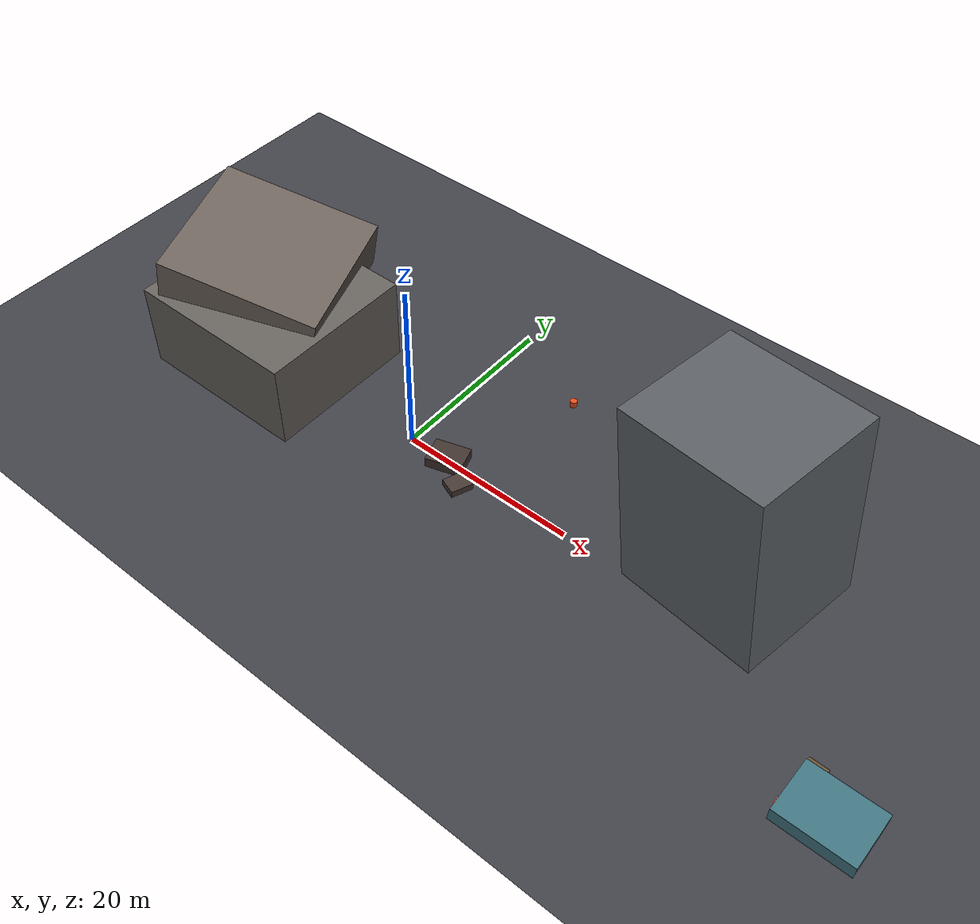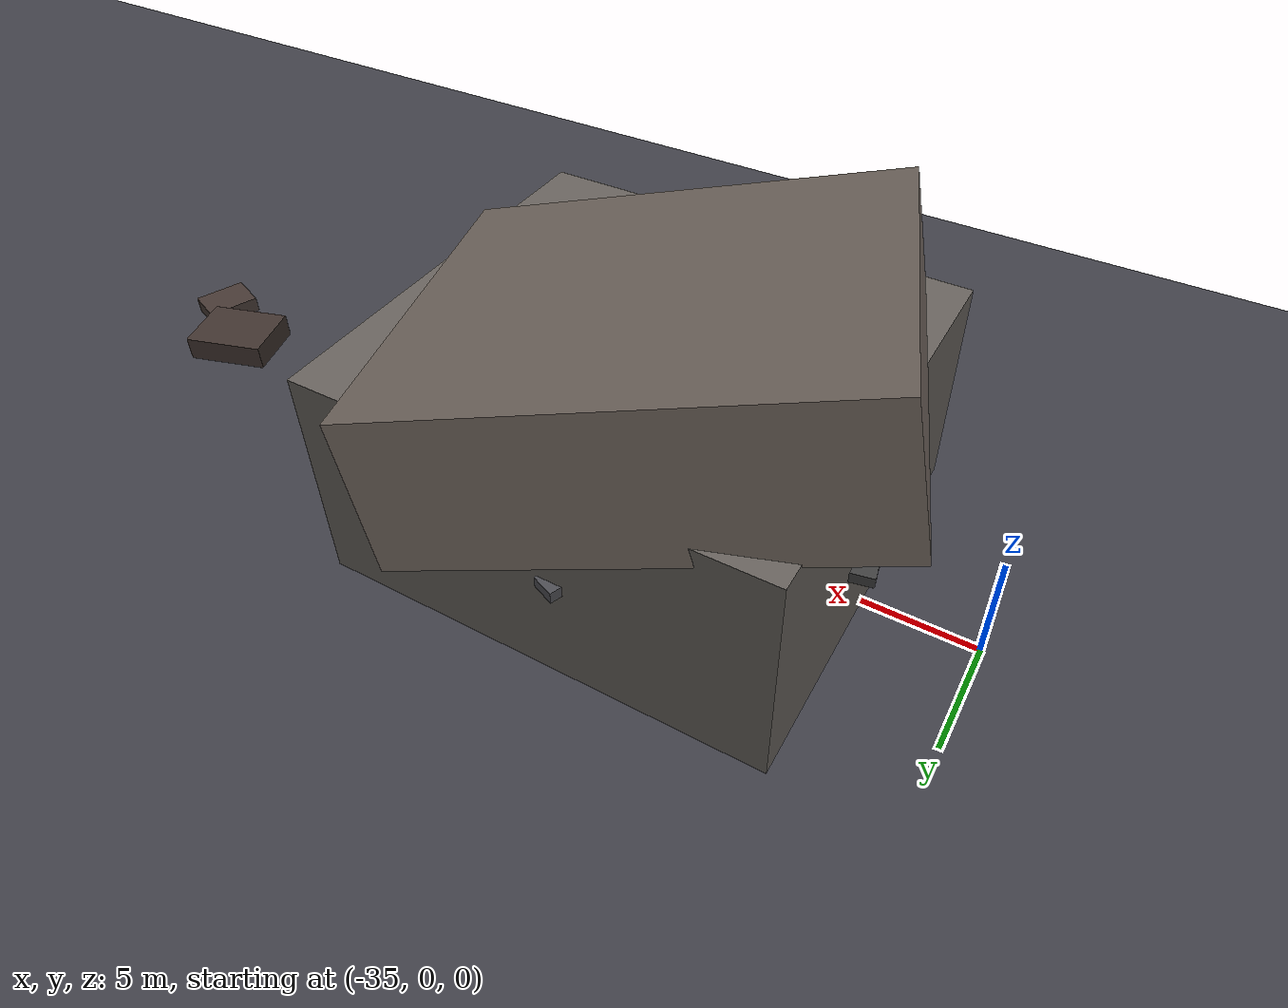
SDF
<?xml version="1.0"?>
<sdf version="1.7">
  <world name="disaster_scene">
    <scene>
      <ambient>0.15 0.15 0.2 1</ambient>
      <background>0.05 0.05 0.08 1</background>
    </scene>

    <gravity>0 0 -9.81</gravity>

    <light type="directional" name="golden_hour_key">
      <pose>-30 20 40 -0.4 0.6 0.5</pose>
      <diffuse>1.0 0.85 0.6 1</diffuse>
      <specular>0.5 0.4 0.3 1</specular>
      <intensity>2.5</intensity>
      <cast_shadows>true</cast_shadows>
    </light>

    <light type="directional" name="cool_fill">
      <pose>40 -15 25 0.2 -0.4 -2.5</pose>
      <diffuse>0.5 0.6 0.9 1</diffuse>
      <specular>0.2 0.3 0.5 1</specular>
      <intensity>1.2</intensity>
      <cast_shadows>false</cast_shadows>
    </light>

    <!-- Ground plane with asphalt texture hint -->
    <model name="ground_block">
      <static>true</static>
      <pose>0 0 0 0 0 0</pose>
      <link name="link">
        <collision name="collision">
          <geometry>
            <plane>
              <normal>0 0 1</normal>
              <size>150 120</size>
            </plane>
          </geometry>
        </collision>
        <visual name="visual">
          <geometry>
            <plane>
              <normal>0 0 1</normal>
              <size>150 120</size>
            </plane>
          </geometry>
          <material>
            <ambient>0.2 0.2 0.22 1</ambient>
            <diffuse>0.25 0.25 0.28 1</diffuse>
          </material>
        </visual>
      </link>
    </model>

    <!-- Building A collapsed -->
    <model name="building_a_base">
      <static>true</static>
      <pose>-20 0 5 0 0 0</pose>
      <link name="link">
        <collision name="collision">
          <geometry>
            <box>
              <size>20 18 10</size>
            </box>
          </geometry>
        </collision>
        <visual name="visual">
          <geometry>
            <box>
              <size>20 18 10</size>
            </box>
          </geometry>
          <material>
            <ambient>0.35 0.33 0.32 1</ambient>
            <diffuse>0.4 0.38 0.36 1</diffuse>
          </material>
        </visual>
      </link>
    </model>

    <model name="building_a_top">
      <static>true</static>
      <pose>-22 2 11 0.1 0.2 0.35</pose>
      <link name="link">
        <collision name="collision">
          <geometry>
            <box>
              <size>18 16 6</size>
            </box>
          </geometry>
        </collision>
        <visual name="visual">
          <geometry>
            <box>
              <size>18 16 6</size>
            </box>
          </geometry>
          <material>
            <ambient>0.4 0.36 0.33 1</ambient>
            <diffuse>0.42 0.38 0.35 1</diffuse>
          </material>
        </visual>
      </link>
    </model>

    <!-- Rubble beams for Building A -->
    <model name="building_a_beams">
      <static>true</static>
      <pose>-25 3 4 0 0 0.2</pose>
      <link name="beam1">
        <collision name="collision">
          <geometry>
            <box>
              <size>12 1 0.5</size>
            </box>
          </geometry>
        </collision>
        <visual name="visual">
          <geometry>
            <box>
              <size>12 1 0.5</size>
            </box>
          </geometry>
          <material>
            <ambient>0.25 0.25 0.25 1</ambient>
          </material>
        </visual>
      </link>
      <link name="beam2">
        <pose>3 2 1 0 0 1.0</pose>
        <collision name="collision">
          <geometry>
            <box>
              <size>8 1 0.5</size>
            </box>
          </geometry>
        </collision>
        <visual name="visual">
          <geometry>
            <box>
              <size>8 1 0.5</size>
            </box>
          </geometry>
          <material>
            <ambient>0.3 0.3 0.32 1</ambient>
          </material>
        </visual>
      </link>
    </model>

    <!-- Building B leaning structure -->
    <model name="building_b">
      <static>true</static>
      <pose>35 5 12 0.05 -0.1 -0.18</pose>
      <link name="link">
        <collision name="collision">
          <geometry>
            <box>
              <size>16 14 22</size>
            </box>
          </geometry>
        </collision>
        <visual name="visual">
          <geometry>
            <box>
              <size>16 14 22</size>
            </box>
          </geometry>
          <material>
            <ambient>0.32 0.34 0.36 1</ambient>
            <diffuse>0.36 0.38 0.4 1</diffuse>
          </material>
        </visual>
      </link>
    </model>

    <!-- Debris piles -->
    <model name="debris_cluster">
      <static>true</static>
      <pose>5 0 0 0 0 0</pose>
      <link name="chunk1">
        <pose>0 0 0.6 0 0 0.3</pose>
        <collision name="collision">
          <geometry>
            <box>
              <size>4 3 1.2</size>
            </box>
          </geometry>
        </collision>
        <visual name="visual">
          <geometry>
            <box>
              <size>4 3 1.2</size>
            </box>
          </geometry>
          <material>
            <ambient>0.25 0.2 0.18 1</ambient>
          </material>
        </visual>
      </link>
      <link name="chunk2">
        <pose>3 -2 0.4 0 0 1.2</pose>
        <collision name="collision">
          <geometry>
            <box>
              <size>2.5 2 0.8</size>
            </box>
          </geometry>
        </collision>
        <visual name="visual">
          <geometry>
            <box>
              <size>2.5 2 0.8</size>
            </box>
          </geometry>
          <material>
            <ambient>0.27 0.22 0.2 1</ambient>
          </material>
        </visual>
      </link>
    </model>

    <!-- Rescue zone -->
    <model name="rescue_zone">
      <static>true</static>
      <pose>55 -10 0.3 0 0 0</pose>
      <link name="tent">
        <collision name="collision">
          <geometry>
            <box>
              <size>8 6 2.5</size>
            </box>
          </geometry>
        </collision>
        <visual name="visual">
          <geometry>
            <box>
              <size>8 6 2.5</size>
            </box>
          </geometry>
          <material>
            <ambient>0.2 0.35 0.4 1</ambient>
            <diffuse>0.25 0.45 0.5 1</diffuse>
          </material>
        </visual>
      </link>
      <link name="generator">
        <pose>-3 3 -0.1 0 0 0</pose>
        <collision name="collision">
          <geometry>
            <box>
              <size>2 1.5 1.2</size>
            </box>
          </geometry>
        </collision>
        <visual name="visual">
          <geometry>
            <box>
              <size>2 1.5 1.2</size>
            </box>
          </geometry>
          <material>
            <ambient>0.4 0.32 0.2 1</ambient>
          </material>
        </visual>
      </link>
    </model>

    <!-- Flares / hazard beacons -->
    <model name="hazard_marker">
      <static>true</static>
      <pose>10 15 0 0 0 0</pose>
      <link name="link">
        <collision name="collision">
          <geometry>
            <cylinder>
              <radius>0.4</radius>
              <length>1.2</length>
            </cylinder>
          </geometry>
        </collision>
        <visual name="visual">
          <geometry>
            <cylinder>
              <radius>0.4</radius>
              <length>1.2</length>
            </cylinder>
          </geometry>
          <material>
            <ambient>0.9 0.3 0.1 1</ambient>
            <emissive>1.0 0.2 0.05 1</emissive>
          </material>
        </visual>
      </link>
    </model>

    <!-- Survivor-like compact thermal signature -->
    <model name="thermal_survivor_a">
      <static>true</static>
      <pose>-16 5 0.4 0 0 0</pose>
      <link name="link">
        <collision name="collision">
          <geometry>
            <sphere>
              <radius>0.35</radius>
            </sphere>
          </geometry>
        </collision>
        <visual name="visual">
          <geometry>
            <sphere>
              <radius>0.35</radius>
            </sphere>
          </geometry>
          <material>
            <ambient>1.0 0.2 0.1 1</ambient>
            <diffuse>1.0 0.25 0.1 1</diffuse>
            <emissive>1.0 0.45 0.2 1</emissive>
          </material>
          <temperature>325</temperature>
        </visual>
      </link>
    </model>

    <!-- Engine-like broad thermal source for suppression tuning -->
    <model name="thermal_engine_block">
      <static>true</static>
      <pose>52 -12 0.8 0 0 0.1</pose>
      <link name="link">
        <collision name="collision">
          <geometry>
            <box>
              <size>2.2 1.3 1.1</size>
            </box>
          </geometry>
        </collision>
        <visual name="visual">
          <geometry>
            <box>
              <size>2.2 1.3 1.1</size>
            </box>
          </geometry>
          <material>
            <ambient>0.7 0.25 0.15 1</ambient>
            <diffuse>0.8 0.3 0.2 1</diffuse>
            <emissive>0.9 0.35 0.2 1</emissive>
          </material>
          <temperature>360</temperature>
        </visual>
      </link>
    </model>

    <!-- Cinematic camera rig with programmable controller -->
    <include>
      <uri>model://cinematic_camera</uri>
      <pose>0 -40 80 0.2 0.1 0</pose>
    </include>
  </world>
</sdf>

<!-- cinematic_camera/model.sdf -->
<sdf version="1.7">
  <model name="cinematic_camera">
    <static>true</static>
    <pose>0 0 60 0 0 0</pose>
    <link name="camera_link">
      <inertial>
        <mass>1.0</mass>
        <inertia>
          <ixx>0.01</ixx>
          <iyy>0.01</iyy>
          <izz>0.01</izz>
        </inertia>
      </inertial>
      <sensor name="cinematic_sensor" type="camera">
        <pose>0 0 0 0 0 0</pose>
        <camera>
          <horizontal_fov>1.2</horizontal_fov>
          <image>
            <width>1920</width>
            <height>1080</height>
          </image>
          <clip>
            <near>0.1</near>
            <far>500</far>
          </clip>
        </camera>
        <always_on>1</always_on>
        <visualize>true</visualize>
      </sensor>
    </link>
    <plugin name="cinematic_camera_controller" filename="libaeris_camera_controller.so">
      <camera_link>camera_link</camera_link>
    </plugin>
  </model>
</sdf>
